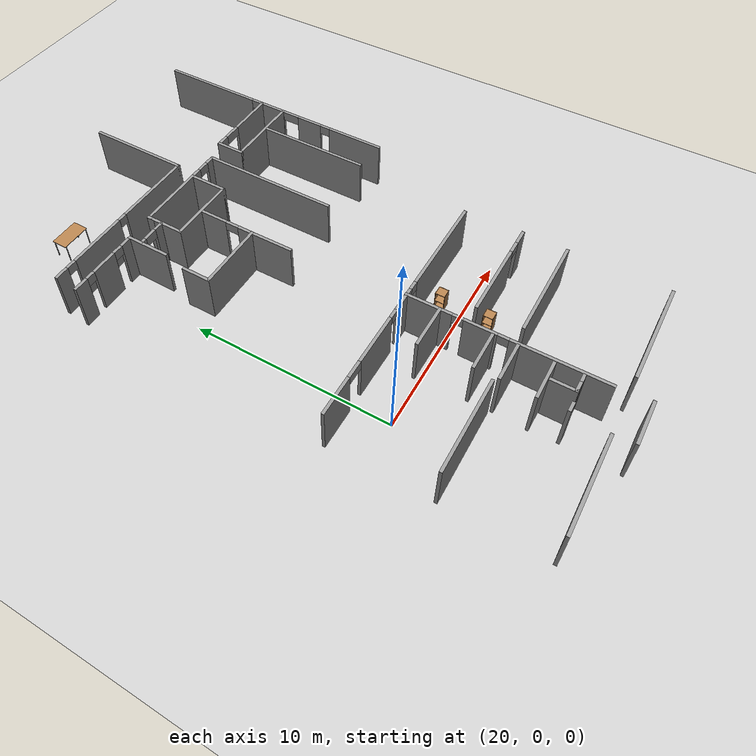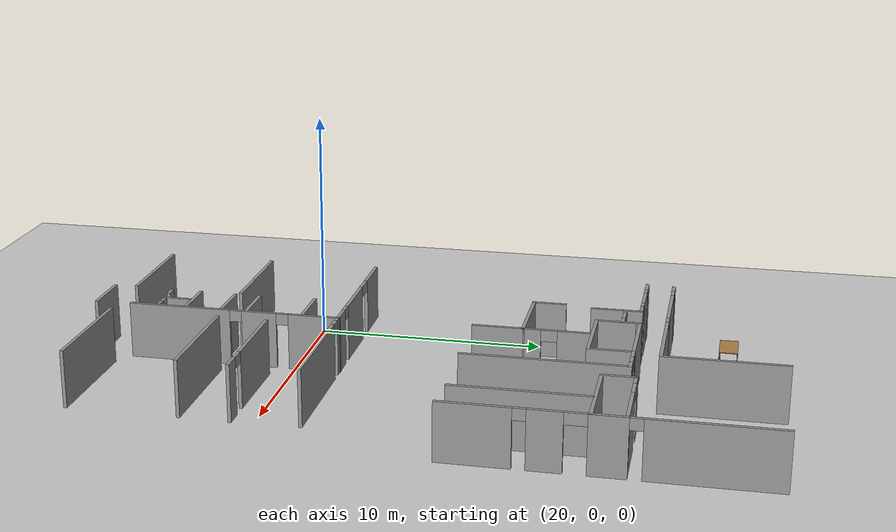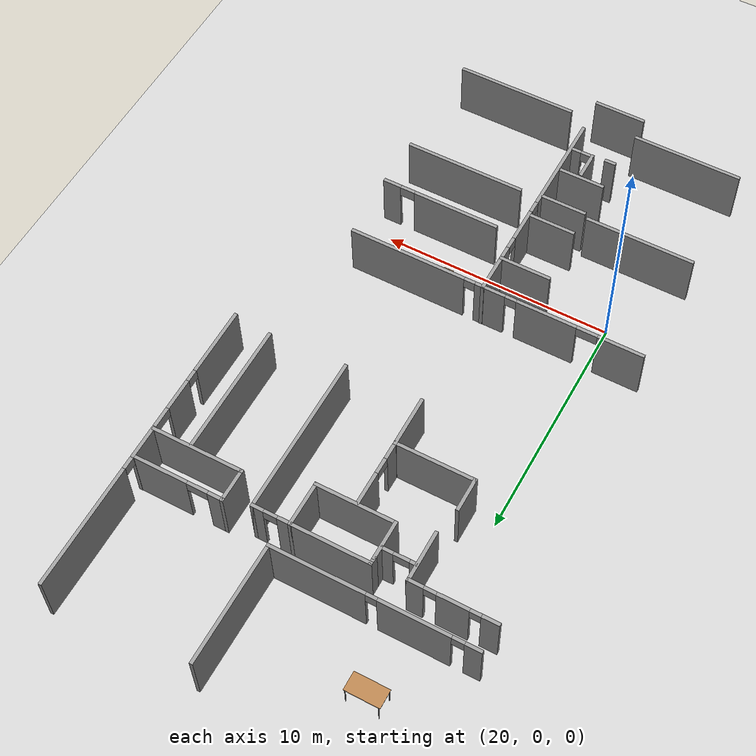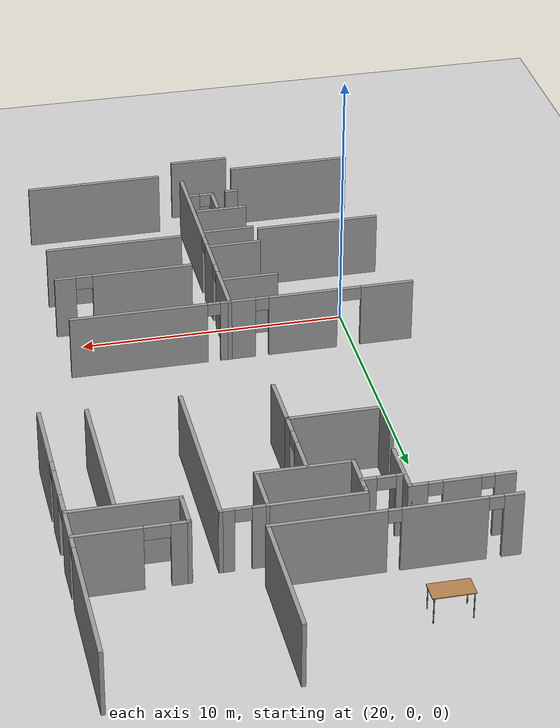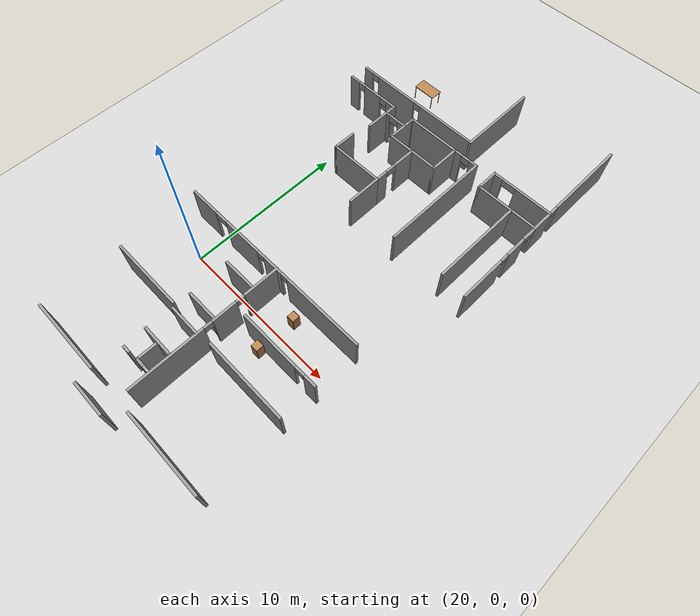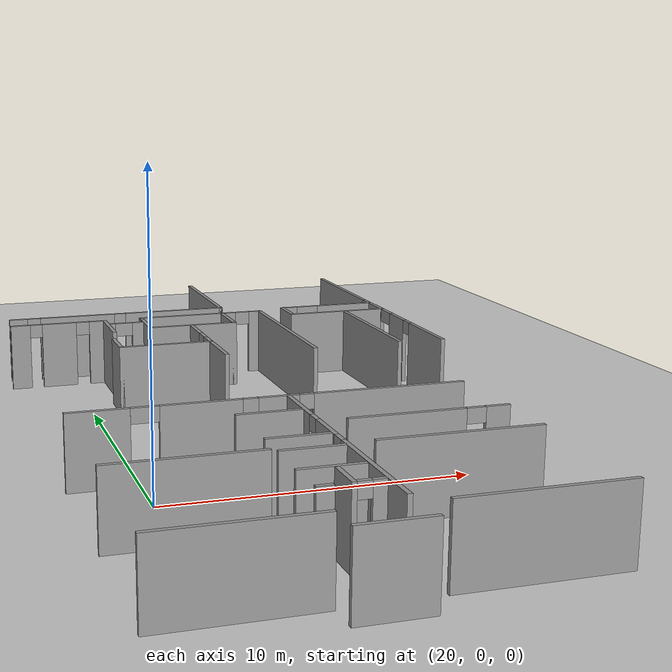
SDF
<sdf version="1.6">
 <world name="default">
  <model name="ground_plane">
   <static>1</static>
   <link name="link">
    <collision name="collision">
     <geometry><plane><normal>0 0 1</normal><size>100 100</size></plane></geometry>
     <surface><friction><ode><mu>100</mu><mu2>50</mu2></ode></friction></surface>
    </collision>
    <visual name="visual">
     <cast_shadows>0</cast_shadows>
     <geometry><plane><normal>0 0 1</normal><size>100 100</size></plane></geometry>
     <material>
      <script><uri>file://media/materials/scripts/gazebo.material</uri><name>Gazebo/Grey</name></script>
     </material>
    </visual>
   </link>
  </model>
  <model name="se1f1_fin.sdf">
   <pose>1.7543 -3.15003 0 0 -0 0</pose>
   <link name="Wall_133">
    <pose>20.2832 18.9065 0 0 -0 0</pose>
    <visual name="Wall_133_Visual_0">
     <pose>-4.02599 0 1.25 0 -0 0</pose>
     <geometry><box><size>0.698029 0.15 2.5</size></box></geometry>
     <material>
      <script><uri>file://media/materials/scripts/gazebo.material</uri><name>Gazebo/Grey</name></script>
      <ambient>1 1 1 1</ambient>
     </material>
     <meta><layer>0</layer></meta>
    </visual>
    <collision name="Wall_133_Collision_0">
     <geometry><box><size>0.698029 0.15 2.5</size></box></geometry>
     <pose>-4.02599 0 1.25 0 -0 0</pose>
    </collision>
    <visual name="Wall_133_Visual_1">
     <pose>-1.67036 0 1.25 0 -0 0</pose>
     <geometry><box><size>2.98279 0.15 2.5</size></box></geometry>
     <material>
      <script><uri>file://media/materials/scripts/gazebo.material</uri><name>Gazebo/Grey</name></script>
      <ambient>1 1 1 1</ambient>
     </material>
     <meta><layer>0</layer></meta>
    </visual>
    <collision name="Wall_133_Collision_1">
     <geometry><box><size>2.98279 0.15 2.5</size></box></geometry>
     <pose>-1.67036 0 1.25 0 -0 0</pose>
    </collision>
    <visual name="Wall_133_Visual_2">
     <pose>2.32939 0 1.25 0 -0 0</pose>
     <geometry><box><size>4.09121 0.15 2.5</size></box></geometry>
     <material>
      <script><uri>file://media/materials/scripts/gazebo.material</uri><name>Gazebo/Grey</name></script>
      <ambient>1 1 1 1</ambient>
     </material>
     <meta><layer>0</layer></meta>
    </visual>
    <collision name="Wall_133_Collision_2">
     <geometry><box><size>4.09121 0.15 2.5</size></box></geometry>
     <pose>2.32939 0 1.25 0 -0 0</pose>
    </collision>
    <visual name="Wall_133_Visual_3">
     <pose>-3.41936 0 2.25 0 -0 0</pose>
     <geometry><box><size>0.515219 0.15 0.5</size></box></geometry>
     <material>
      <script><uri>file://media/materials/scripts/gazebo.material</uri><name>Gazebo/Grey</name></script>
      <ambient>1 1 1 1</ambient>
     </material>
     <meta><layer>0</layer></meta>
    </visual>
    <collision name="Wall_133_Collision_3">
     <geometry><box><size>0.515219 0.15 0.5</size></box></geometry>
     <pose>-3.41936 0 2.25 0 -0 0</pose>
    </collision>
    <visual name="Wall_133_Visual_4">
     <pose>0.052416 0 2.25 0 -0 0</pose>
     <geometry><box><size>0.462748 0.15 0.5</size></box></geometry>
     <material>
      <script><uri>file://media/materials/scripts/gazebo.material</uri><name>Gazebo/Grey</name></script>
      <ambient>1 1 1 1</ambient>
     </material>
     <meta><layer>0</layer></meta>
    </visual>
    <collision name="Wall_133_Collision_4">
     <geometry><box><size>0.462748 0.15 0.5</size></box></geometry>
     <pose>0.052416 0 2.25 0 -0 0</pose>
    </collision>
   </link>
   <link name="Wall_134">
    <collision name="Wall_134_Collision">
     <geometry><box><size>5.25 0.15 2.5</size></box></geometry>
     <pose>0 0 1.25 0 -0 0</pose>
    </collision>
    <visual name="Wall_134_Visual">
     <pose>0 0 1.25 0 -0 0</pose>
     <geometry><box><size>5.25 0.15 2.5</size></box></geometry>
     <material>
      <script><uri>file://media/materials/scripts/gazebo.material</uri><name>Gazebo/Grey</name></script>
      <ambient>1 1 1 1</ambient>
     </material>
     <meta><layer>0</layer></meta>
    </visual>
    <pose>24.5832 21.4565 0 0 -0 1.5708</pose>
   </link>
   <link name="Wall_139">
    <collision name="Wall_139_Collision">
     <geometry><box><size>1.5 0.15 2.5</size></box></geometry>
     <pose>0 0 1.25 0 -0 0</pose>
    </collision>
    <visual name="Wall_139_Visual">
     <pose>0 0 1.25 0 -0 0</pose>
     <geometry><box><size>1.5 0.15 2.5</size></box></geometry>
     <material>
      <script><uri>file://media/materials/scripts/gazebo.material</uri><name>Gazebo/Grey</name></script>
      <ambient>1 1 1 1</ambient>
     </material>
     <meta><layer>0</layer></meta>
    </visual>
    <pose>19.2532 13.6902 0 0 0 -1.5708</pose>
   </link>
   <link name="Wall_140">
    <collision name="Wall_140_Collision">
     <geometry><box><size>3.5 0.15 2.5</size></box></geometry>
     <pose>0 0 1.25 0 -0 0</pose>
    </collision>
    <visual name="Wall_140_Visual">
     <pose>0 0 1.25 0 -0 0</pose>
     <geometry><box><size>3.5 0.15 2.5</size></box></geometry>
     <material>
      <script><uri>file://media/materials/scripts/gazebo.material</uri><name>Gazebo/Grey</name></script>
      <ambient>1 1 1 1</ambient>
     </material>
     <meta><layer>0</layer></meta>
    </visual>
    <pose>20.9282 13.0152 0 0 -0 0</pose>
   </link>
   <link name="Wall_141">
    <collision name="Wall_141_Collision">
     <geometry><box><size>2.26327 0.15 2.5</size></box></geometry>
     <pose>0 0 1.25 0 -0 0</pose>
    </collision>
    <visual name="Wall_141_Visual">
     <pose>0 0 1.25 0 -0 0</pose>
     <geometry><box><size>2.26327 0.15 2.5</size></box></geometry>
     <material>
      <script><uri>file://media/materials/scripts/gazebo.material</uri><name>Gazebo/Grey</name></script>
      <ambient>1 1 1 1</ambient>
     </material>
     <meta><layer>0</layer></meta>
    </visual>
    <pose>22.6098 11.9718 0 0 0 -1.56454</pose>
   </link>
   <link name="Wall_143">
    <pose>17.7032 17.7152 0 0 -0 0</pose>
    <visual name="Wall_143_Visual_0">
     <pose>-1.5035 0 1.25 0 -0 0</pose>
     <geometry><box><size>0.743 0.15 2.5</size></box></geometry>
     <material>
      <script><uri>file://media/materials/scripts/gazebo.material</uri><name>Gazebo/Grey</name></script>
      <ambient>1 1 1 1</ambient>
     </material>
     <meta><layer>0</layer></meta>
    </visual>
    <collision name="Wall_143_Collision_0">
     <geometry><box><size>0.743 0.15 2.5</size></box></geometry>
     <pose>-1.5035 0 1.25 0 -0 0</pose>
    </collision>
    <visual name="Wall_143_Visual_1">
     <pose>-0.004261 0 1.25 0 -0 0</pose>
     <geometry><box><size>1.32998 0.15 2.5</size></box></geometry>
     <material>
      <script><uri>file://media/materials/scripts/gazebo.material</uri><name>Gazebo/Grey</name></script>
      <ambient>1 1 1 1</ambient>
     </material>
     <meta><layer>0</layer></meta>
    </visual>
    <collision name="Wall_143_Collision_1">
     <geometry><box><size>1.32998 0.15 2.5</size></box></geometry>
     <pose>-0.004261 0 1.25 0 -0 0</pose>
    </collision>
    <visual name="Wall_143_Visual_2">
     <pose>1.52547 0 1.25 0 -0 0</pose>
     <geometry><box><size>0.699051 0.15 2.5</size></box></geometry>
     <material>
      <script><uri>file://media/materials/scripts/gazebo.material</uri><name>Gazebo/Grey</name></script>
      <ambient>1 1 1 1</ambient>
     </material>
     <meta><layer>0</layer></meta>
    </visual>
    <collision name="Wall_143_Collision_2">
     <geometry><box><size>0.699051 0.15 2.5</size></box></geometry>
     <pose>1.52547 0 1.25 0 -0 0</pose>
    </collision>
    <visual name="Wall_143_Visual_3">
     <pose>-0.900626 0 2.25 0 -0 0</pose>
     <geometry><box><size>0.462748 0.15 0.5</size></box></geometry>
     <material>
      <script><uri>file://media/materials/scripts/gazebo.material</uri><name>Gazebo/Grey</name></script>
      <ambient>1 1 1 1</ambient>
     </material>
     <meta><layer>0</layer></meta>
    </visual>
    <collision name="Wall_143_Collision_3">
     <geometry><box><size>0.462748 0.15 0.5</size></box></geometry>
     <pose>-0.900626 0 2.25 0 -0 0</pose>
    </collision>
    <visual name="Wall_143_Visual_4">
     <pose>0.91834 0 2.25 0 -0 0</pose>
     <geometry><box><size>0.515219 0.15 0.5</size></box></geometry>
     <material>
      <script><uri>file://media/materials/scripts/gazebo.material</uri><name>Gazebo/Grey</name></script>
      <ambient>1 1 1 1</ambient>
     </material>
     <meta><layer>0</layer></meta>
    </visual>
    <collision name="Wall_143_Collision_4">
     <geometry><box><size>0.515219 0.15 0.5</size></box></geometry>
     <pose>0.91834 0 2.25 0 -0 0</pose>
    </collision>
   </link>
   <link name="Wall_144">
    <collision name="Wall_144_Collision">
     <geometry><box><size>2.25 0.15 2.5</size></box></geometry>
     <pose>0 0 1.25 0 -0 0</pose>
    </collision>
    <visual name="Wall_144_Visual">
     <pose>0 0 1.25 0 -0 0</pose>
     <geometry><box><size>2.25 0.15 2.5</size></box></geometry>
     <material>
      <script><uri>file://media/materials/scripts/gazebo.material</uri><name>Gazebo/Grey</name></script>
      <ambient>1 1 1 1</ambient>
     </material>
     <meta><layer>0</layer></meta>
    </visual>
    <pose>19.5032 16.6652 0 0 0 -1.5708</pose>
   </link>
   <link name="Wall_147">
    <pose>20.2475 17.0507 0 0 -0 0</pose>
    <visual name="Wall_147_Visual_0">
     <pose>-0.5997 0 1.25 0 -0 0</pose>
     <geometry><box><size>0.300601 0.15 2.5</size></box></geometry>
     <material>
      <script><uri>file://media/materials/scripts/gazebo.material</uri><name>Gazebo/Grey</name></script>
      <ambient>1 1 1 1</ambient>
     </material>
     <meta><layer>0</layer></meta>
    </visual>
    <collision name="Wall_147_Collision_0">
     <geometry><box><size>0.300601 0.15 2.5</size></box></geometry>
     <pose>-0.5997 0 1.25 0 -0 0</pose>
    </collision>
    <visual name="Wall_147_Visual_1">
     <pose>0.486615 0 1.25 0 -0 0</pose>
     <geometry><box><size>0.52677 0.15 2.5</size></box></geometry>
     <material>
      <script><uri>file://media/materials/scripts/gazebo.material</uri><name>Gazebo/Grey</name></script>
      <ambient>1 1 1 1</ambient>
     </material>
     <meta><layer>0</layer></meta>
    </visual>
    <collision name="Wall_147_Collision_1">
     <geometry><box><size>0.52677 0.15 2.5</size></box></geometry>
     <pose>0.486615 0 1.25 0 -0 0</pose>
    </collision>
    <visual name="Wall_147_Visual_2">
     <pose>-0.113085 0 2.25 0 -0 0</pose>
     <geometry><box><size>0.672629 0.15 0.5</size></box></geometry>
     <material>
      <script><uri>file://media/materials/scripts/gazebo.material</uri><name>Gazebo/Grey</name></script>
      <ambient>1 1 1 1</ambient>
     </material>
     <meta><layer>0</layer></meta>
    </visual>
    <collision name="Wall_147_Collision_2">
     <geometry><box><size>0.672629 0.15 0.5</size></box></geometry>
     <pose>-0.113085 0 2.25 0 -0 0</pose>
    </collision>
   </link>
   <link name="Wall_149">
    <collision name="Wall_149_Collision">
     <geometry><box><size>1.75 0.15 2.5</size></box></geometry>
     <pose>0 0 1.25 0 -0 0</pose>
    </collision>
    <visual name="Wall_149_Visual">
     <pose>0 0 1.25 0 -0 0</pose>
     <geometry><box><size>1.75 0.15 2.5</size></box></geometry>
     <material>
      <script><uri>file://media/materials/scripts/gazebo.material</uri><name>Gazebo/Grey</name></script>
      <ambient>1 1 1 1</ambient>
     </material>
     <meta><layer>0</layer></meta>
    </visual>
    <pose>20.9876 16.7401 0 0 0 -1.5708</pose>
   </link>
   <link name="Wall_150">
    <collision name="Wall_150_Collision">
     <geometry><box><size>3.5 0.15 2.5</size></box></geometry>
     <pose>0 0 1.25 0 -0 0</pose>
    </collision>
    <visual name="Wall_150_Visual">
     <pose>0 0 1.25 0 -0 0</pose>
     <geometry><box><size>3.5 0.15 2.5</size></box></geometry>
     <material>
      <script><uri>file://media/materials/scripts/gazebo.material</uri><name>Gazebo/Grey</name></script>
      <ambient>1 1 1 1</ambient>
     </material>
     <meta><layer>0</layer></meta>
    </visual>
    <pose>22.6626 15.9401 0 0 -0 0</pose>
   </link>
   <link name="Wall_151">
    <collision name="Wall_151_Collision">
     <geometry><box><size>2 0.15 2.5</size></box></geometry>
     <pose>0 0 1.25 0 -0 0</pose>
    </collision>
    <visual name="Wall_151_Visual">
     <pose>0 0 1.25 0 -0 0</pose>
     <geometry><box><size>2 0.15 2.5</size></box></geometry>
     <material>
      <script><uri>file://media/materials/scripts/gazebo.material</uri><name>Gazebo/Grey</name></script>
      <ambient>1 1 1 1</ambient>
     </material>
     <meta><layer>0</layer></meta>
    </visual>
    <pose>24.3376 16.8651 0 0 -0 1.5708</pose>
   </link>
   <link name="Wall_152">
    <collision name="Wall_152_Collision">
     <geometry><box><size>3.5 0.15 2.5</size></box></geometry>
     <pose>0 0 1.25 0 -0 0</pose>
    </collision>
    <visual name="Wall_152_Visual">
     <pose>0 0 1.25 0 -0 0</pose>
     <geometry><box><size>3.5 0.15 2.5</size></box></geometry>
     <material>
      <script><uri>file://media/materials/scripts/gazebo.material</uri><name>Gazebo/Grey</name></script>
      <ambient>1 1 1 1</ambient>
     </material>
     <meta><layer>0</layer></meta>
    </visual>
    <pose>22.6626 17.7901 0 0 -0 3.14159</pose>
   </link>
   <link name="Wall_153">
    <collision name="Wall_153_Collision">
     <geometry><box><size>0.4 0.15 2.5</size></box></geometry>
     <pose>0 0 1.25 0 -0 0</pose>
    </collision>
    <visual name="Wall_153_Visual">
     <pose>0 0 1.25 0 -0 0</pose>
     <geometry><box><size>0.4 0.15 2.5</size></box></geometry>
     <material>
      <script><uri>file://media/materials/scripts/gazebo.material</uri><name>Gazebo/Grey</name></script>
      <ambient>1 1 1 1</ambient>
     </material>
     <meta><layer>0</layer></meta>
    </visual>
    <pose>20.9876 17.6651 0 0 0 -1.5708</pose>
   </link>
   <link name="Wall_157">
    <pose>22.6032 14.4534 0 0 -0 1.5708</pose>
    <visual name="Wall_157_Visual_0">
     <pose>-1.08549 0 1.25 0 -0 0</pose>
     <geometry><box><size>0.829014 0.15 2.5</size></box></geometry>
     <material>
      <script><uri>file://media/materials/scripts/gazebo.material</uri><name>Gazebo/Grey</name></script>
      <ambient>1 1 1 1</ambient>
     </material>
     <meta><layer>0</layer></meta>
    </visual>
    <collision name="Wall_157_Collision_0">
     <geometry><box><size>0.829014 0.15 2.5</size></box></geometry>
     <pose>-1.08549 0 1.25 0 -0 0</pose>
    </collision>
    <visual name="Wall_157_Visual_1">
     <pose>0.759566 0 1.25 0 -0 0</pose>
     <geometry><box><size>1.48087 0.15 2.5</size></box></geometry>
     <material>
      <script><uri>file://media/materials/scripts/gazebo.material</uri><name>Gazebo/Grey</name></script>
      <ambient>1 1 1 1</ambient>
     </material>
     <meta><layer>0</layer></meta>
    </visual>
    <collision name="Wall_157_Collision_1">
     <geometry><box><size>1.48087 0.15 2.5</size></box></geometry>
     <pose>0.759566 0 1.25 0 -0 0</pose>
    </collision>
    <visual name="Wall_157_Visual_2">
     <pose>-0.325927 0 2.25 0 -0 0</pose>
     <geometry><box><size>0.690119 0.15 0.5</size></box></geometry>
     <material>
      <script><uri>file://media/materials/scripts/gazebo.material</uri><name>Gazebo/Grey</name></script>
      <ambient>1 1 1 1</ambient>
     </material>
     <meta><layer>0</layer></meta>
    </visual>
    <collision name="Wall_157_Collision_2">
     <geometry><box><size>0.690119 0.15 0.5</size></box></geometry>
     <pose>-0.325927 0 2.25 0 -0 0</pose>
    </collision>
   </link>
   <link name="Wall_159">
    <pose>25.1376 17.7901 0 0 -0 0</pose>
    <visual name="Wall_159_Visual_0">
     <pose>-0.566805 0 1.25 0 -0 0</pose>
     <geometry><box><size>0.61639 0.15 2.5</size></box></geometry>
     <material>
      <script><uri>file://media/materials/scripts/gazebo.material</uri><name>Gazebo/Grey</name></script>
      <ambient>1 1 1 1</ambient>
     </material>
     <meta><layer>0</layer></meta>
    </visual>
    <collision name="Wall_159_Collision_0">
     <geometry><box><size>0.61639 0.15 2.5</size></box></geometry>
     <pose>-0.566805 0 1.25 0 -0 0</pose>
    </collision>
    <visual name="Wall_159_Visual_1">
     <pose>0.600784 0 1.25 0 -0 0</pose>
     <geometry><box><size>0.548431 0.15 2.5</size></box></geometry>
     <material>
      <script><uri>file://media/materials/scripts/gazebo.material</uri><name>Gazebo/Grey</name></script>
      <ambient>1 1 1 1</ambient>
     </material>
     <meta><layer>0</layer></meta>
    </visual>
    <collision name="Wall_159_Collision_1">
     <geometry><box><size>0.548431 0.15 2.5</size></box></geometry>
     <pose>0.600784 0 1.25 0 -0 0</pose>
    </collision>
    <visual name="Wall_159_Visual_2">
     <pose>0.033979 0 2.25 0 -0 0</pose>
     <geometry><box><size>0.585179 0.15 0.5</size></box></geometry>
     <material>
      <script><uri>file://media/materials/scripts/gazebo.material</uri><name>Gazebo/Grey</name></script>
      <ambient>1 1 1 1</ambient>
     </material>
     <meta><layer>0</layer></meta>
    </visual>
    <collision name="Wall_159_Collision_2">
     <geometry><box><size>0.585179 0.15 0.5</size></box></geometry>
     <pose>0.033979 0 2.25 0 -0 0</pose>
    </collision>
   </link>
   <link name="Wall_162">
    <collision name="Wall_162_Collision">
     <geometry><box><size>7 0.15 2.5</size></box></geometry>
     <pose>0 0 1.25 0 -0 0</pose>
    </collision>
    <visual name="Wall_162_Visual">
     <pose>0 0 1.25 0 -0 0</pose>
     <geometry><box><size>7 0.15 2.5</size></box></geometry>
     <material>
      <script><uri>file://media/materials/scripts/gazebo.material</uri><name>Gazebo/Grey</name></script>
      <ambient>1 1 1 1</ambient>
     </material>
     <meta><layer>0</layer></meta>
    </visual>
    <pose>25.9376 14.3651 0 0 0 -1.5708</pose>
   </link>
   <link name="Wall_164">
    <collision name="Wall_164_Collision">
     <geometry><box><size>1.5 0.15 2.5</size></box></geometry>
     <pose>0 0 1.25 0 -0 0</pose>
    </collision>
    <visual name="Wall_164_Visual">
     <pose>0 0 1.25 0 -0 0</pose>
     <geometry><box><size>1.5 0.15 2.5</size></box></geometry>
     <material>
      <script><uri>file://media/materials/scripts/gazebo.material</uri><name>Gazebo/Grey</name></script>
      <ambient>1 1 1 1</ambient>
     </material>
     <meta><layer>0</layer></meta>
    </visual>
    <pose>27.0343 17.4489 0 0 0 -1.5708</pose>
   </link>
   <link name="Wall_165">
    <collision name="Wall_165_Collision">
     <geometry><box><size>4 0.15 2.5</size></box></geometry>
     <pose>0 0 1.25 0 -0 0</pose>
    </collision>
    <visual name="Wall_165_Visual">
     <pose>0 0 1.25 0 -0 0</pose>
     <geometry><box><size>4 0.15 2.5</size></box></geometry>
     <material>
      <script><uri>file://media/materials/scripts/gazebo.material</uri><name>Gazebo/Grey</name></script>
      <ambient>1 1 1 1</ambient>
     </material>
     <meta><layer>0</layer></meta>
    </visual>
    <pose>28.9593 16.7739 0 0 -0 0</pose>
   </link>
   <link name="Wall_167">
    <pose>28.9593 18.1239 0 0 -0 0</pose>
    <visual name="Wall_167_Visual_0">
     <pose>-1.65405 0 1.25 0 -0 0</pose>
     <geometry><box><size>0.691893 0.15 2.5</size></box></geometry>
     <material>
      <script><uri>file://media/materials/scripts/gazebo.material</uri><name>Gazebo/Grey</name></script>
      <ambient>1 1 1 1</ambient>
     </material>
     <meta><layer>0</layer></meta>
    </visual>
    <collision name="Wall_167_Collision_0">
     <geometry><box><size>0.691893 0.15 2.5</size></box></geometry>
     <pose>-1.65405 0 1.25 0 -0 0</pose>
    </collision>
    <visual name="Wall_167_Visual_1">
     <pose>0.795947 0 1.25 0 -0 0</pose>
     <geometry><box><size>2.40811 0.15 2.5</size></box></geometry>
     <material>
      <script><uri>file://media/materials/scripts/gazebo.material</uri><name>Gazebo/Grey</name></script>
      <ambient>1 1 1 1</ambient>
     </material>
     <meta><layer>0</layer></meta>
    </visual>
    <collision name="Wall_167_Collision_1">
     <geometry><box><size>2.40811 0.15 2.5</size></box></geometry>
     <pose>0.795947 0 1.25 0 -0 0</pose>
    </collision>
    <visual name="Wall_167_Visual_2">
     <pose>-0.858107 0 2.25 0 -0 0</pose>
     <geometry><box><size>0.9 0.15 0.5</size></box></geometry>
     <material>
      <script><uri>file://media/materials/scripts/gazebo.material</uri><name>Gazebo/Grey</name></script>
      <ambient>1 1 1 1</ambient>
     </material>
     <meta><layer>0</layer></meta>
    </visual>
    <collision name="Wall_167_Collision_2">
     <geometry><box><size>0.9 0.15 0.5</size></box></geometry>
     <pose>-0.858107 0 2.25 0 -0 0</pose>
    </collision>
   </link>
   <link name="Wall_169">
    <collision name="Wall_169_Collision">
     <geometry><box><size>5.75 0.15 2.5</size></box></geometry>
     <pose>0 0 1.25 0 -0 0</pose>
    </collision>
    <visual name="Wall_169_Visual">
     <pose>0 0 1.25 0 -0 0</pose>
     <geometry><box><size>5.75 0.15 2.5</size></box></geometry>
     <material>
      <script><uri>file://media/materials/scripts/gazebo.material</uri><name>Gazebo/Grey</name></script>
      <ambient>1 1 1 1</ambient>
     </material>
     <meta><layer>0</layer></meta>
    </visual>
    <pose>29.273 13.8723 0 0 0 -1.5708</pose>
   </link>
   <link name="Wall_171">
    <pose>22.4646 5.0769 0 0 -0 3.14159</pose>
    <visual name="Wall_171_Visual_0">
     <pose>-3.92283 0 1.25 0 -0 0</pose>
     <geometry><box><size>5.15433 0.15 2.5</size></box></geometry>
     <material>
      <script><uri>file://media/materials/scripts/gazebo.material</uri><name>Gazebo/Grey</name></script>
      <ambient>1 1 1 1</ambient>
     </material>
     <meta><layer>0</layer></meta>
    </visual>
    <collision name="Wall_171_Collision_0">
     <geometry><box><size>5.15433 0.15 2.5</size></box></geometry>
     <pose>-3.92283 0 1.25 0 -0 0</pose>
    </collision>
    <visual name="Wall_171_Visual_1">
     <pose>-0.196719 0 1.25 0 -0 0</pose>
     <geometry><box><size>1.34266 0.15 2.5</size></box></geometry>
     <material>
      <script><uri>file://media/materials/scripts/gazebo.material</uri><name>Gazebo/Grey</name></script>
      <ambient>1 1 1 1</ambient>
     </material>
     <meta><layer>0</layer></meta>
    </visual>
    <collision name="Wall_171_Collision_1">
     <geometry><box><size>1.34266 0.15 2.5</size></box></geometry>
     <pose>-0.196719 0 1.25 0 -0 0</pose>
    </collision>
    <visual name="Wall_171_Visual_2">
     <pose>2.28459 0 1.25 0 -0 0</pose>
     <geometry><box><size>2.62449 0.15 2.5</size></box></geometry>
     <material>
      <script><uri>file://media/materials/scripts/gazebo.material</uri><name>Gazebo/Grey</name></script>
      <ambient>1 1 1 1</ambient>
     </material>
     <meta><layer>0</layer></meta>
    </visual>
    <collision name="Wall_171_Collision_2">
     <geometry><box><size>2.62449 0.15 2.5</size></box></geometry>
     <pose>2.28459 0 1.25 0 -0 0</pose>
    </collision>
    <visual name="Wall_171_Visual_3">
     <pose>5.49842 0 1.25 0 -0 0</pose>
     <geometry><box><size>2.00317 0.15 2.5</size></box></geometry>
     <material>
      <script><uri>file://media/materials/scripts/gazebo.material</uri><name>Gazebo/Grey</name></script>
      <ambient>1 1 1 1</ambient>
     </material>
     <meta><layer>0</layer></meta>
    </visual>
    <collision name="Wall_171_Collision_3">
     <geometry><box><size>2.00317 0.15 2.5</size></box></geometry>
     <pose>5.49842 0 1.25 0 -0 0</pose>
    </collision>
    <visual name="Wall_171_Visual_4">
     <pose>-1.10686 0 2.25 0 -0 0</pose>
     <geometry><box><size>0.477615 0.15 0.5</size></box></geometry>
     <material>
      <script><uri>file://media/materials/scripts/gazebo.material</uri><name>Gazebo/Grey</name></script>
      <ambient>1 1 1 1</ambient>
     </material>
     <meta><layer>0</layer></meta>
    </visual>
    <collision name="Wall_171_Collision_4">
     <geometry><box><size>0.477615 0.15 0.5</size></box></geometry>
     <pose>-1.10686 0 2.25 0 -0 0</pose>
    </collision>
    <visual name="Wall_171_Visual_5">
     <pose>0.723476 0 2.25 0 -0 0</pose>
     <geometry><box><size>0.497729 0.15 0.5</size></box></geometry>
     <material>
      <script><uri>file://media/materials/scripts/gazebo.material</uri><name>Gazebo/Grey</name></script>
      <ambient>1 1 1 1</ambient>
     </material>
     <meta><layer>0</layer></meta>
    </visual>
    <collision name="Wall_171_Collision_5">
     <geometry><box><size>0.497729 0.15 0.5</size></box></geometry>
     <pose>0.723476 0 2.25 0 -0 0</pose>
    </collision>
    <visual name="Wall_171_Visual_6">
     <pose>4.04683 0 2.25 0 -0 0</pose>
     <geometry><box><size>0.9 0.15 0.5</size></box></geometry>
     <material>
      <script><uri>file://media/materials/scripts/gazebo.material</uri><name>Gazebo/Grey</name></script>
      <ambient>1 1 1 1</ambient>
     </material>
     <meta><layer>0</layer></meta>
    </visual>
    <collision name="Wall_171_Collision_6">
     <geometry><box><size>0.9 0.15 0.5</size></box></geometry>
     <pose>4.04683 0 2.25 0 -0 0</pose>
    </collision>
   </link>
   <link name="Wall_183">
    <pose>22.9779 0.418246 0 0 0 -1.5708</pose>
    <visual name="Wall_183_Visual_0">
     <pose>-3.60464 0 1.25 0 -0 0</pose>
     <geometry><box><size>2.29072 0.15 2.5</size></box></geometry>
     <material>
      <script><uri>file://media/materials/scripts/gazebo.material</uri><name>Gazebo/Grey</name></script>
      <ambient>1 1 1 1</ambient>
     </material>
     <meta><layer>0</layer></meta>
    </visual>
    <collision name="Wall_183_Collision_0">
     <geometry><box><size>2.29072 0.15 2.5</size></box></geometry>
     <pose>-3.60464 0 1.25 0 -0 0</pose>
    </collision>
    <visual name="Wall_183_Visual_1">
     <pose>-1.14439 0 1.25 0 -0 0</pose>
     <geometry><box><size>1.55386 0.15 2.5</size></box></geometry>
     <material>
      <script><uri>file://media/materials/scripts/gazebo.material</uri><name>Gazebo/Grey</name></script>
      <ambient>1 1 1 1</ambient>
     </material>
     <meta><layer>0</layer></meta>
    </visual>
    <collision name="Wall_183_Collision_1">
     <geometry><box><size>1.55386 0.15 2.5</size></box></geometry>
     <pose>-1.14439 0 1.25 0 -0 0</pose>
    </collision>
    <visual name="Wall_183_Visual_2">
     <pose>2.46025 0 1.25 0 -0 0</pose>
     <geometry><box><size>4.57951 0.15 2.5</size></box></geometry>
     <material>
      <script><uri>file://media/materials/scripts/gazebo.material</uri><name>Gazebo/Grey</name></script>
      <ambient>1 1 1 1</ambient>
     </material>
     <meta><layer>0</layer></meta>
    </visual>
    <collision name="Wall_183_Collision_2">
     <geometry><box><size>4.57951 0.15 2.5</size></box></geometry>
     <pose>2.46025 0 1.25 0 -0 0</pose>
    </collision>
    <visual name="Wall_183_Visual_3">
     <pose>-2.1903 0 2.25 0 -0 0</pose>
     <geometry><box><size>0.537956 0.15 0.5</size></box></geometry>
     <material>
      <script><uri>file://media/materials/scripts/gazebo.material</uri><name>Gazebo/Grey</name></script>
      <ambient>1 1 1 1</ambient>
     </material>
     <meta><layer>0</layer></meta>
    </visual>
    <collision name="Wall_183_Collision_3">
     <geometry><box><size>0.537956 0.15 0.5</size></box></geometry>
     <pose>-2.1903 0 2.25 0 -0 0</pose>
    </collision>
    <visual name="Wall_183_Visual_4">
     <pose>-0.098488 0 2.25 0 -0 0</pose>
     <geometry><box><size>0.537956 0.15 0.5</size></box></geometry>
     <material>
      <script><uri>file://media/materials/scripts/gazebo.material</uri><name>Gazebo/Grey</name></script>
      <ambient>1 1 1 1</ambient>
     </material>
     <meta><layer>0</layer></meta>
    </visual>
    <collision name="Wall_183_Collision_4">
     <geometry><box><size>0.537956 0.15 0.5</size></box></geometry>
     <pose>-0.098488 0 2.25 0 -0 0</pose>
    </collision>
   </link>
   <link name="Wall_185">
    <collision name="Wall_185_Collision">
     <geometry><box><size>2.25 0.15 2.5</size></box></geometry>
     <pose>0 0 1.25 0 -0 0</pose>
    </collision>
    <visual name="Wall_185_Visual">
     <pose>0 0 1.25 0 -0 0</pose>
     <geometry><box><size>2.25 0.15 2.5</size></box></geometry>
     <material>
      <script><uri>file://media/materials/scripts/gazebo.material</uri><name>Gazebo/Grey</name></script>
      <ambient>1 1 1 1</ambient>
     </material>
     <meta><layer>0</layer></meta>
    </visual>
    <pose>21.9171 3.47196 0 0 -0 0</pose>
   </link>
   <link name="Wall_187">
    <collision name="Wall_187_Collision">
     <geometry><box><size>2 0.15 2.5</size></box></geometry>
     <pose>0 0 1.25 0 -0 0</pose>
    </collision>
    <visual name="Wall_187_Visual">
     <pose>0 0 1.25 0 -0 0</pose>
     <geometry><box><size>2 0.15 2.5</size></box></geometry>
     <material>
      <script><uri>file://media/materials/scripts/gazebo.material</uri><name>Gazebo/Grey</name></script>
      <ambient>1 1 1 1</ambient>
     </material>
     <meta><layer>0</layer></meta>
    </visual>
    <pose>21.9145 0.963565 0 0 -0 0</pose>
   </link>
   <link name="Wall_189">
    <collision name="Wall_189_Collision">
     <geometry><box><size>2 0.15 2.5</size></box></geometry>
     <pose>0 0 1.25 0 -0 0</pose>
    </collision>
    <visual name="Wall_189_Visual">
     <pose>0 0 1.25 0 -0 0</pose>
     <geometry><box><size>2 0.15 2.5</size></box></geometry>
     <material>
      <script><uri>file://media/materials/scripts/gazebo.material</uri><name>Gazebo/Grey</name></script>
      <ambient>1 1 1 1</ambient>
     </material>
     <meta><layer>0</layer></meta>
    </visual>
    <pose>21.9451 -0.168273 0 0 -0 0</pose>
   </link>
   <link name="Wall_191">
    <collision name="Wall_191_Collision">
     <geometry><box><size>2 0.15 2.5</size></box></geometry>
     <pose>0 0 1.25 0 -0 0</pose>
    </collision>
    <visual name="Wall_191_Visual">
     <pose>0 0 1.25 0 -0 0</pose>
     <geometry><box><size>2 0.15 2.5</size></box></geometry>
     <material>
      <script><uri>file://media/materials/scripts/gazebo.material</uri><name>Gazebo/Grey</name></script>
      <ambient>1 1 1 1</ambient>
     </material>
     <meta><layer>0</layer></meta>
    </visual>
    <pose>21.8839 -1.78956 0 0 -0 0</pose>
   </link>
   <link name="Wall_193">
    <collision name="Wall_193_Collision">
     <geometry><box><size>0.5 0.15 2.5</size></box></geometry>
     <pose>0 0 1.25 0 -0 0</pose>
    </collision>
    <visual name="Wall_193_Visual">
     <pose>0 0 1.25 0 -0 0</pose>
     <geometry><box><size>0.5 0.15 2.5</size></box></geometry>
     <material>
      <script><uri>file://media/materials/scripts/gazebo.material</uri><name>Gazebo/Grey</name></script>
      <ambient>1 1 1 1</ambient>
     </material>
     <meta><layer>0</layer></meta>
    </visual>
    <pose>21.2029 -3.13162 0 0 -0 0</pose>
   </link>
   <link name="Wall_195">
    <collision name="Wall_195_Collision">
     <geometry><box><size>1.25 0.15 2.5</size></box></geometry>
     <pose>0 0 1.25 0 -0 0</pose>
    </collision>
    <visual name="Wall_195_Visual">
     <pose>0 0 1.25 0 -0 0</pose>
     <geometry><box><size>1.25 0.15 2.5</size></box></geometry>
     <material>
      <script><uri>file://media/materials/scripts/gazebo.material</uri><name>Gazebo/Grey</name></script>
      <ambient>1 1 1 1</ambient>
     </material>
     <meta><layer>0</layer></meta>
    </visual>
    <pose>21.9976 -2.51397 0 0 0 -1.5708</pose>
   </link>
   <link name="Wall_196">
    <pose>22.4226 -3.05247 0 0 -0 0</pose>
    <visual name="Wall_196_Visual_0">
     <pose>-0.458735 0 1.25 0 -0 0</pose>
     <geometry><box><size>0.08253 0.15 2.5</size></box></geometry>
     <material>
      <script><uri>file://media/materials/scripts/gazebo.material</uri><name>Gazebo/Grey</name></script>
      <ambient>1 1 1 1</ambient>
     </material>
     <meta><layer>0</layer></meta>
    </visual>
    <collision name="Wall_196_Collision_0">
     <geometry><box><size>0.08253 0.15 2.5</size></box></geometry>
     <pose>-0.458735 0 1.25 0 -0 0</pose>
    </collision>
    <visual name="Wall_196_Visual_1">
     <pose>0.290129 0 1.25 0 -0 0</pose>
     <geometry><box><size>0.419742 0.15 2.5</size></box></geometry>
     <material>
      <script><uri>file://media/materials/scripts/gazebo.material</uri><name>Gazebo/Grey</name></script>
      <ambient>1 1 1 1</ambient>
     </material>
     <meta><layer>0</layer></meta>
    </visual>
    <collision name="Wall_196_Collision_1">
     <geometry><box><size>0.419742 0.15 2.5</size></box></geometry>
     <pose>0.290129 0 1.25 0 -0 0</pose>
    </collision>
    <visual name="Wall_196_Visual_2">
     <pose>-0.168606 0 2.25 0 -0 0</pose>
     <geometry><box><size>0.497729 0.15 0.5</size></box></geometry>
     <material>
      <script><uri>file://media/materials/scripts/gazebo.material</uri><name>Gazebo/Grey</name></script>
      <ambient>1 1 1 1</ambient>
     </material>
     <meta><layer>0</layer></meta>
    </visual>
    <collision name="Wall_196_Collision_2">
     <geometry><box><size>0.497729 0.15 0.5</size></box></geometry>
     <pose>-0.168606 0 2.25 0 -0 0</pose>
    </collision>
   </link>
   <link name="Wall_198">
    <collision name="Wall_198_Collision">
     <geometry><box><size>2.25 0.15 2.5</size></box></geometry>
     <pose>0 0 1.25 0 -0 0</pose>
    </collision>
    <visual name="Wall_198_Visual">
     <pose>0 0 1.25 0 -0 0</pose>
     <geometry><box><size>2.25 0.15 2.5</size></box></geometry>
     <material>
      <script><uri>file://media/materials/scripts/gazebo.material</uri><name>Gazebo/Grey</name></script>
      <ambient>1 1 1 1</ambient>
     </material>
     <meta><layer>0</layer></meta>
    </visual>
    <pose>21.9927 -5.86027 0 0 -0 0</pose>
   </link>
   <link name="Wall_229">
    <collision name="Wall_229_Collision">
     <geometry><box><size>4.75 0.15 2.5</size></box></geometry>
     <pose>0 0 1.25 0 -0 0</pose>
    </collision>
    <visual name="Wall_229_Visual">
     <pose>0 0 1.25 0 -0 0</pose>
     <geometry><box><size>4.75 0.15 2.5</size></box></geometry>
     <material>
      <script><uri>file://media/materials/scripts/gazebo.material</uri><name>Gazebo/Grey</name></script>
      <ambient>1 1 1 1</ambient>
     </material>
     <meta><layer>0</layer></meta>
    </visual>
    <pose>18.473 -4.88696 0 0 -0 0</pose>
   </link>
   <link name="Wall_231">
    <collision name="Wall_231_Collision">
     <geometry><box><size>4.75 0.15 2.5</size></box></geometry>
     <pose>0 0 1.25 0 -0 0</pose>
    </collision>
    <visual name="Wall_231_Visual">
     <pose>0 0 1.25 0 -0 0</pose>
     <geometry><box><size>4.75 0.15 2.5</size></box></geometry>
     <material>
      <script><uri>file://media/materials/scripts/gazebo.material</uri><name>Gazebo/Grey</name></script>
      <ambient>1 1 1 1</ambient>
     </material>
     <meta><layer>0</layer></meta>
    </visual>
    <pose>18.438 0.027752 0 0 -0 0</pose>
   </link>
   <link name="Wall_233">
    <pose>26.4536 2.16154 0 0 -0 0</pose>
    <visual name="Wall_233_Visual_0">
     <pose>-0.720835 0 1.25 0 -0 0</pose>
     <geometry><box><size>3.80833 0.15 2.5</size></box></geometry>
     <material>
      <script><uri>file://media/materials/scripts/gazebo.material</uri><name>Gazebo/Grey</name></script>
      <ambient>1 1 1 1</ambient>
     </material>
     <meta><layer>0</layer></meta>
    </visual>
    <collision name="Wall_233_Collision_0">
     <geometry><box><size>3.80833 0.15 2.5</size></box></geometry>
     <pose>-0.720835 0 1.25 0 -0 0</pose>
    </collision>
    <visual name="Wall_233_Visual_1">
     <pose>2.22343 0 1.25 0 -0 0</pose>
     <geometry><box><size>0.803146 0.15 2.5</size></box></geometry>
     <material>
      <script><uri>file://media/materials/scripts/gazebo.material</uri><name>Gazebo/Grey</name></script>
      <ambient>1 1 1 1</ambient>
     </material>
     <meta><layer>0</layer></meta>
    </visual>
    <collision name="Wall_233_Collision_1">
     <geometry><box><size>0.803146 0.15 2.5</size></box></geometry>
     <pose>2.22343 0 1.25 0 -0 0</pose>
    </collision>
    <visual name="Wall_233_Visual_2">
     <pose>1.50259 0 2.25 0 -0 0</pose>
     <geometry><box><size>0.638524 0.15 0.5</size></box></geometry>
     <material>
      <script><uri>file://media/materials/scripts/gazebo.material</uri><name>Gazebo/Grey</name></script>
      <ambient>1 1 1 1</ambient>
     </material>
     <meta><layer>0</layer></meta>
    </visual>
    <collision name="Wall_233_Collision_2">
     <geometry><box><size>0.638524 0.15 0.5</size></box></geometry>
     <pose>1.50259 0 2.25 0 -0 0</pose>
    </collision>
   </link>
   <link name="Wall_235">
    <collision name="Wall_235_Collision">
     <geometry><box><size>5.25 0.15 2.5</size></box></geometry>
     <pose>0 0 1.25 0 -0 0</pose>
    </collision>
    <visual name="Wall_235_Visual">
     <pose>0 0 1.25 0 -0 0</pose>
     <geometry><box><size>5.25 0.15 2.5</size></box></geometry>
     <material>
      <script><uri>file://media/materials/scripts/gazebo.material</uri><name>Gazebo/Grey</name></script>
      <ambient>1 1 1 1</ambient>
     </material>
     <meta><layer>0</layer></meta>
    </visual>
    <pose>26.4361 -0.024718 0 0 -0 0</pose>
   </link>
   <link name="Wall_237">
    <collision name="Wall_237_Collision">
     <geometry><box><size>5.25 0.15 2.5</size></box></geometry>
     <pose>0 0 1.25 0 -0 0</pose>
    </collision>
    <visual name="Wall_237_Visual">
     <pose>0 0 1.25 0 -0 0</pose>
     <geometry><box><size>5.25 0.15 2.5</size></box></geometry>
     <material>
      <script><uri>file://media/materials/scripts/gazebo.material</uri><name>Gazebo/Grey</name></script>
      <ambient>1 1 1 1</ambient>
     </material>
     <meta><layer>0</layer></meta>
    </visual>
    <pose>26.4361 -4.88696 0 0 -0 0</pose>
   </link>
   <link name="Wall_4">
    <pose>30.925 17.4675 0 0 0 -1.5708</pose>
    <visual name="Wall_4_Visual_0">
     <pose>-3.94878 0 1.25 0 -0 0</pose>
     <geometry><box><size>5.35245 0.15 2.5</size></box></geometry>
     <material>
      <script><uri>file://media/materials/scripts/gazebo.material</uri><name>Gazebo/Grey</name></script>
      <ambient>1 1 1 1</ambient>
     </material>
     <meta><layer>0</layer></meta>
    </visual>
    <collision name="Wall_4_Collision_0">
     <geometry><box><size>5.35245 0.15 2.5</size></box></geometry>
     <pose>-3.94878 0 1.25 0 -0 0</pose>
    </collision>
    <visual name="Wall_4_Visual_1">
     <pose>0.021342 0 1.25 0 -0 0</pose>
     <geometry><box><size>1.52237 0.15 2.5</size></box></geometry>
     <material>
      <script><uri>file://media/materials/scripts/gazebo.material</uri><name>Gazebo/Grey</name></script>
      <ambient>1 1 1 1</ambient>
     </material>
     <meta><layer>0</layer></meta>
    </visual>
    <collision name="Wall_4_Collision_1">
     <geometry><box><size>1.52237 0.15 2.5</size></box></geometry>
     <pose>0.021342 0 1.25 0 -0 0</pose>
    </collision>
    <visual name="Wall_4_Visual_2">
     <pose>2.3825 0 1.25 0 -0 0</pose>
     <geometry><box><size>1.39994 0.15 2.5</size></box></geometry>
     <material>
      <script><uri>file://media/materials/scripts/gazebo.material</uri><name>Gazebo/Grey</name></script>
      <ambient>1 1 1 1</ambient>
     </material>
     <meta><layer>0</layer></meta>
    </visual>
    <collision name="Wall_4_Collision_2">
     <geometry><box><size>1.39994 0.15 2.5</size></box></geometry>
     <pose>2.3825 0 1.25 0 -0 0</pose>
    </collision>
    <visual name="Wall_4_Visual_3">
     <pose>5.12009 0 1.25 0 -0 0</pose>
     <geometry><box><size>3.00982 0.15 2.5</size></box></geometry>
     <material>
      <script><uri>file://media/materials/scripts/gazebo.material</uri><name>Gazebo/Grey</name></script>
      <ambient>1 1 1 1</ambient>
     </material>
     <meta><layer>0</layer></meta>
    </visual>
    <collision name="Wall_4_Collision_3">
     <geometry><box><size>3.00982 0.15 2.5</size></box></geometry>
     <pose>5.12009 0 1.25 0 -0 0</pose>
    </collision>
    <visual name="Wall_4_Visual_4">
     <pose>-1.0062 0 2.25 0 -0 0</pose>
     <geometry><box><size>0.532709 0.15 0.5</size></box></geometry>
     <material>
      <script><uri>file://media/materials/scripts/gazebo.material</uri><name>Gazebo/Grey</name></script>
      <ambient>1 1 1 1</ambient>
     </material>
     <meta><layer>0</layer></meta>
    </visual>
    <collision name="Wall_4_Collision_4">
     <geometry><box><size>0.532709 0.15 0.5</size></box></geometry>
     <pose>-1.0062 0 2.25 0 -0 0</pose>
    </collision>
    <visual name="Wall_4_Visual_5">
     <pose>1.23253 0 2.25 0 -0 0</pose>
     <geometry><box><size>0.9 0.15 0.5</size></box></geometry>
     <material>
      <script><uri>file://media/materials/scripts/gazebo.material</uri><name>Gazebo/Grey</name></script>
      <ambient>1 1 1 1</ambient>
     </material>
     <meta><layer>0</layer></meta>
    </visual>
    <collision name="Wall_4_Collision_5">
     <geometry><box><size>0.9 0.15 0.5</size></box></geometry>
     <pose>1.23253 0 2.25 0 -0 0</pose>
    </collision>
    <visual name="Wall_4_Visual_6">
     <pose>3.34883 0 2.25 0 -0 0</pose>
     <geometry><box><size>0.532709 0.15 0.5</size></box></geometry>
     <material>
      <script><uri>file://media/materials/scripts/gazebo.material</uri><name>Gazebo/Grey</name></script>
      <ambient>1 1 1 1</ambient>
     </material>
     <meta><layer>0</layer></meta>
    </visual>
    <collision name="Wall_4_Collision_6">
     <geometry><box><size>0.532709 0.15 0.5</size></box></geometry>
     <pose>3.34883 0 2.25 0 -0 0</pose>
    </collision>
   </link>
   <static>1</static>
  </model>
  <model name="cabinet">
   <static>1</static>
   <link name="cabinet_bottom_plate">
    <inertial>
     <pose>0 0 -1 0 -0 0</pose>
     <inertia><ixx>2.05</ixx><ixy>0</ixy><ixz>0</ixz><iyy>2.05</iyy><iyz>0</iyz><izz>2.05</izz></inertia>
     <mass>25</mass>
    </inertial>
    <collision name="cabinet_bottom_plate_geom">
     <pose>0 0 0.01 0 -0 0</pose>
     <geometry><box><size>0.45 0.45 0.02</size></box></geometry>
    </collision>
    <visual name="cabinet_bottom_plate_geom_visual">
     <pose>0 0 0.01 0 -0 0</pose>
     <geometry><box><size>0.45 0.45 0.02</size></box></geometry>
     <material>
      <script><uri>file://media/materials/scripts/gazebo.material</uri><name>Gazebo/Wood</name></script>
     </material>
    </visual>
    <collision name="cabinet_bottom_plate_geom_cabinet_back_plate">
     <pose>0.235 0 0.51 0 -0 0</pose>
     <geometry><box><size>0.02 0.45 1.02</size></box></geometry>
    </collision>
    <visual name="cabinet_bottom_plate_geom_cabinet_back_plate_visual">
     <pose>0.235 0 0.51 0 -0 0</pose>
     <geometry><box><size>0.02 0.45 1.02</size></box></geometry>
     <material>
      <script><uri>file://media/materials/scripts/gazebo.material</uri><name>Gazebo/Wood</name></script>
     </material>
    </visual>
    <collision name="cabinet_bottom_plate_geom_cabinet_left_plate">
     <pose>0 0.235 0.51 0 -0 0</pose>
     <geometry><box><size>0.45 0.02 1.02</size></box></geometry>
    </collision>
    <visual name="cabinet_bottom_plate_geom_cabinet_left_plate_visual">
     <pose>0 0.235 0.51 0 -0 0</pose>
     <geometry><box><size>0.45 0.02 1.02</size></box></geometry>
     <material>
      <script><uri>file://media/materials/scripts/gazebo.material</uri><name>Gazebo/Wood</name></script>
     </material>
    </visual>
    <collision name="cabinet_bottom_plate_geom_cabinet_middle_plate">
     <pose>0 0 0.51 0 -0 0</pose>
     <geometry><box><size>0.45 0.45 0.02</size></box></geometry>
    </collision>
    <visual name="cabinet_bottom_plate_geom_cabinet_middle_plate_visual">
     <pose>0 0 0.51 0 -0 0</pose>
     <geometry><box><size>0.45 0.45 0.02</size></box></geometry>
     <material>
      <script><uri>file://media/materials/scripts/gazebo.material</uri><name>Gazebo/Wood</name></script>
     </material>
    </visual>
    <collision name="cabinet_bottom_plate_geom_cabinet_right_plate">
     <pose>0 -0.235 0.51 0 -0 0</pose>
     <geometry><box><size>0.45 0.02 1.02</size></box></geometry>
    </collision>
    <visual name="cabinet_bottom_plate_geom_cabinet_right_plate_visual">
     <pose>0 -0.235 0.51 0 -0 0</pose>
     <geometry><box><size>0.45 0.02 1.02</size></box></geometry>
     <material>
      <script><uri>file://media/materials/scripts/gazebo.material</uri><name>Gazebo/Wood</name></script>
     </material>
    </visual>
    <collision name="cabinet_bottom_plate_geom_cabinet_top_plate">
     <pose>0 0 1.01 0 -0 0</pose>
     <geometry><box><size>0.45 0.45 0.02</size></box></geometry>
    </collision>
    <visual name="cabinet_bottom_plate_geom_cabinet_top_plate_visual">
     <pose>0 0 1.01 0 -0 0</pose>
     <geometry><box><size>0.45 0.45 0.02</size></box></geometry>
     <material>
      <script><uri>file://media/materials/scripts/gazebo.material</uri><name>Gazebo/Wood</name></script>
     </material>
    </visual>
   </link>
   <pose>26.7182 -1.32968 0 0 -0 0</pose>
  </model>
  <model name="cabinet_0">
   <static>1</static>
   <link name="cabinet_bottom_plate">
    <inertial>
     <pose>0 0 -1 0 -0 0</pose>
     <inertia><ixx>2.05</ixx><ixy>0</ixy><ixz>0</ixz><iyy>2.05</iyy><iyz>0</iyz><izz>2.05</izz></inertia>
     <mass>25</mass>
    </inertial>
    <collision name="cabinet_bottom_plate_geom">
     <pose>0 0 0.01 0 -0 0</pose>
     <geometry><box><size>0.45 0.45 0.02</size></box></geometry>
    </collision>
    <visual name="cabinet_bottom_plate_geom_visual">
     <pose>0 0 0.01 0 -0 0</pose>
     <geometry><box><size>0.45 0.45 0.02</size></box></geometry>
     <material>
      <script><uri>file://media/materials/scripts/gazebo.material</uri><name>Gazebo/Wood</name></script>
     </material>
    </visual>
    <collision name="cabinet_bottom_plate_geom_cabinet_back_plate">
     <pose>0.235 0 0.51 0 -0 0</pose>
     <geometry><box><size>0.02 0.45 1.02</size></box></geometry>
    </collision>
    <visual name="cabinet_bottom_plate_geom_cabinet_back_plate_visual">
     <pose>0.235 0 0.51 0 -0 0</pose>
     <geometry><box><size>0.02 0.45 1.02</size></box></geometry>
     <material>
      <script><uri>file://media/materials/scripts/gazebo.material</uri><name>Gazebo/Wood</name></script>
     </material>
    </visual>
    <collision name="cabinet_bottom_plate_geom_cabinet_left_plate">
     <pose>0 0.235 0.51 0 -0 0</pose>
     <geometry><box><size>0.45 0.02 1.02</size></box></geometry>
    </collision>
    <visual name="cabinet_bottom_plate_geom_cabinet_left_plate_visual">
     <pose>0 0.235 0.51 0 -0 0</pose>
     <geometry><box><size>0.45 0.02 1.02</size></box></geometry>
     <material>
      <script><uri>file://media/materials/scripts/gazebo.material</uri><name>Gazebo/Wood</name></script>
     </material>
    </visual>
    <collision name="cabinet_bottom_plate_geom_cabinet_middle_plate">
     <pose>0 0 0.51 0 -0 0</pose>
     <geometry><box><size>0.45 0.45 0.02</size></box></geometry>
    </collision>
    <visual name="cabinet_bottom_plate_geom_cabinet_middle_plate_visual">
     <pose>0 0 0.51 0 -0 0</pose>
     <geometry><box><size>0.45 0.45 0.02</size></box></geometry>
     <material>
      <script><uri>file://media/materials/scripts/gazebo.material</uri><name>Gazebo/Wood</name></script>
     </material>
    </visual>
    <collision name="cabinet_bottom_plate_geom_cabinet_right_plate">
     <pose>0 -0.235 0.51 0 -0 0</pose>
     <geometry><box><size>0.45 0.02 1.02</size></box></geometry>
    </collision>
    <visual name="cabinet_bottom_plate_geom_cabinet_right_plate_visual">
     <pose>0 -0.235 0.51 0 -0 0</pose>
     <geometry><box><size>0.45 0.02 1.02</size></box></geometry>
     <material>
      <script><uri>file://media/materials/scripts/gazebo.material</uri><name>Gazebo/Wood</name></script>
     </material>
    </visual>
    <collision name="cabinet_bottom_plate_geom_cabinet_top_plate">
     <pose>0 0 1.01 0 -0 0</pose>
     <geometry><box><size>0.45 0.45 0.02</size></box></geometry>
    </collision>
    <visual name="cabinet_bottom_plate_geom_cabinet_top_plate_visual">
     <pose>0 0 1.01 0 -0 0</pose>
     <geometry><box><size>0.45 0.45 0.02</size></box></geometry>
     <material>
      <script><uri>file://media/materials/scripts/gazebo.material</uri><name>Gazebo/Wood</name></script>
     </material>
    </visual>
   </link>
   <pose>26.7914 1.0948 0 0 -0 0</pose>
  </model>
  <model name="table_14">
   <static>1</static>
   <link name="link">
    <collision name="surface">
     <pose>0 0 1 0 -0 0</pose>
     <geometry><box><size>1.5 0.8 0.03</size></box></geometry>
     <surface><friction><ode><mu>0.6</mu><mu2>0.6</mu2></ode></friction></surface>
    </collision>
    <visual name="visual1">
     <pose>0 0 1 0 -0 0</pose>
     <geometry><box><size>1.5 0.8 0.03</size></box></geometry>
     <material>
      <script><uri>file://media/materials/scripts/gazebo.material</uri><name>Gazebo/Wood</name></script>
     </material>
    </visual>
    <collision name="front_left_leg">
     <pose>0.68 0.38 0.5 0 -0 0</pose>
     <geometry><cylinder><radius>0.02</radius><length>1</length></cylinder></geometry>
    </collision>
    <visual name="front_left_leg">
     <pose>0.68 0.38 0.5 0 -0 0</pose>
     <geometry><cylinder><radius>0.02</radius><length>1</length></cylinder></geometry>
     <material>
      <script><uri>file://media/materials/scripts/gazebo.material</uri><name>Gazebo/Grey</name></script>
     </material>
    </visual>
    <collision name="front_right_leg">
     <pose>0.68 -0.38 0.5 0 -0 0</pose>
     <geometry><cylinder><radius>0.02</radius><length>1</length></cylinder></geometry>
    </collision>
    <visual name="front_right_leg">
     <pose>0.68 -0.38 0.5 0 -0 0</pose>
     <geometry><cylinder><radius>0.02</radius><length>1</length></cylinder></geometry>
     <material>
      <script><uri>file://media/materials/scripts/gazebo.material</uri><name>Gazebo/Grey</name></script>
     </material>
    </visual>
    <collision name="back_right_leg">
     <pose>-0.68 -0.38 0.5 0 -0 0</pose>
     <geometry><cylinder><radius>0.02</radius><length>1</length></cylinder></geometry>
    </collision>
    <visual name="back_right_leg">
     <pose>-0.68 -0.38 0.5 0 -0 0</pose>
     <geometry><cylinder><radius>0.02</radius><length>1</length></cylinder></geometry>
     <material>
      <script><uri>file://media/materials/scripts/gazebo.material</uri><name>Gazebo/Grey</name></script>
     </material>
    </visual>
    <collision name="back_left_leg">
     <pose>-0.68 0.38 0.5 0 -0 0</pose>
     <geometry><cylinder><radius>0.02</radius><length>1</length></cylinder></geometry>
    </collision>
    <visual name="back_left_leg">
     <pose>-0.68 0.38 0.5 0 -0 0</pose>
     <geometry><cylinder><radius>0.02</radius><length>1</length></cylinder></geometry>
     <material>
      <script><uri>file://media/materials/scripts/gazebo.material</uri><name>Gazebo/Grey</name></script>
     </material>
    </visual>
   </link>
   <pose>20.8483 18.3714 0 0 -0 0</pose>
  </model>
 </world>
</sdf>
